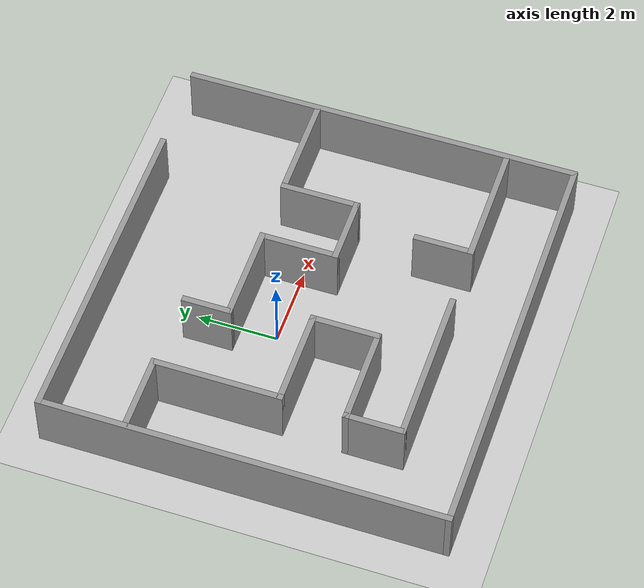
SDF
<sdf version="1.6">
 <world name="default">
  <light name="sun" type="directional">
   <pose>0 0 10 0 -0 0</pose>
   <diffuse>0.8 0.8 0.8 1</diffuse>
   <specular>0.1 0.1 0.1 1</specular>
   <attenuation>
    <range>1000</range>
    <constant>0.9</constant>
    <linear>0.01</linear>
    <quadratic>0.001</quadratic>
   </attenuation>
   <direction>-0.5 0.5 -1</direction>
  </light>
  <model name="ground_plane">
   <static>1</static>
   <link name="link">
    <collision name="collision">
     <geometry><plane><normal>0 0 1</normal><size>100 100</size></plane></geometry>
     <surface><friction><ode><mu>100</mu><mu2>50</mu2></ode></friction></surface>
    </collision>
    <visual name="visual">
     <cast_shadows>0</cast_shadows>
     <geometry><plane><normal>0 0 1</normal><size>100 100</size></plane></geometry>
     <material>
      <script><uri>file://media/materials/scripts/gazebo.material</uri><name>Gazebo/Grey</name></script>
     </material>
    </visual>
   </link>
  </model>
  <gravity>0 0 -9.8</gravity>
  <magnetic_field>6e-06 2.3e-05 -4.2e-05</magnetic_field>
  <atmosphere type="adiabatic"/>
  <physics name="default_physics" default="0" type="ode">
   <max_step_size>0.001</max_step_size>
   <real_time_factor>1</real_time_factor>
   <real_time_update_rate>1000</real_time_update_rate>
  </physics>
  <scene><ambient>0.4 0.4 0.4 1</ambient><background>0.7 0.7 0.7 1</background><shadows>1</shadows></scene>
  <spherical_coordinates>
   <surface_model>EARTH_WGS84</surface_model>
   <latitude_deg>0</latitude_deg>
   <longitude_deg>0</longitude_deg>
   <elevation>0</elevation>
   <heading_deg>0</heading_deg>
  </spherical_coordinates>
  <model name="labirent">
   <pose>0.807206 -0.670636 0 0 -0 0</pose>
   <link name="Wall_19">
    <collision name="Wall_19_Collision">
     <geometry><box><size>10 0.15 1.5</size></box></geometry>
     <pose>0 0 0.75 0 -0 0</pose>
    </collision>
    <visual name="Wall_19_Visual">
     <pose>0 0 0.75 0 -0 0</pose>
     <geometry><box><size>10 0.15 1.5</size></box></geometry>
     <material>
      <script><uri>file://media/materials/scripts/gazebo.material</uri><name>Gazebo/Grey</name></script>
      <ambient>0.564706 0.576471 0.54902 1</ambient>
     </material>
    </visual>
    <pose>5.175 0 0 0 0 -1.5708</pose>
   </link>
   <link name="Wall_20">
    <collision name="Wall_20_Collision">
     <geometry><box><size>10.5 0.15 1.5</size></box></geometry>
     <pose>0 0 0.75 0 -0 0</pose>
    </collision>
    <visual name="Wall_20_Visual">
     <pose>0 0 0.75 0 -0 0</pose>
     <geometry><box><size>10.5 0.15 1.5</size></box></geometry>
     <material>
      <script><uri>file://media/materials/scripts/gazebo.material</uri><name>Gazebo/Grey</name></script>
      <ambient>0.564706 0.576471 0.54902 1</ambient>
     </material>
    </visual>
    <pose>0 -4.925 0 0 -0 3.14159</pose>
   </link>
   <link name="Wall_21">
    <collision name="Wall_21_Collision">
     <geometry><box><size>10 0.15 1.5</size></box></geometry>
     <pose>0 0 0.75 0 -0 0</pose>
    </collision>
    <visual name="Wall_21_Visual">
     <pose>0 0 0.75 0 -0 0</pose>
     <geometry><box><size>10 0.15 1.5</size></box></geometry>
     <material>
      <script><uri>file://media/materials/scripts/gazebo.material</uri><name>Gazebo/Grey</name></script>
      <ambient>0.564706 0.576471 0.54902 1</ambient>
     </material>
    </visual>
    <pose>-5.175 0 0 0 -0 1.5708</pose>
   </link>
   <link name="Wall_22">
    <collision name="Wall_22_Collision">
     <geometry><box><size>8.25 0.15 1.5</size></box></geometry>
     <pose>0 0 0.75 0 -0 0</pose>
    </collision>
    <visual name="Wall_22_Visual">
     <pose>0 0 0.75 0 -0 0</pose>
     <geometry><box><size>8.25 0.15 1.5</size></box></geometry>
     <material>
      <script><uri>file://media/materials/scripts/gazebo.material</uri><name>Gazebo/Grey</name></script>
      <ambient>0.572549 0.576471 0.560784 1</ambient>
     </material>
    </visual>
    <pose>-1.125 4.925 0 0 -0 0</pose>
   </link>
   <link name="Wall_25">
    <collision name="Wall_25_Collision">
     <geometry><box><size>2 0.15 1.5</size></box></geometry>
     <pose>0 0 0.75 0 -0 0</pose>
    </collision>
    <visual name="Wall_25_Visual">
     <pose>0 0 0.75 0 -0 0</pose>
     <geometry><box><size>2 0.15 1.5</size></box></geometry>
     <material>
      <script><uri>file://media/materials/scripts/gazebo.material</uri><name>Gazebo/Grey</name></script>
      <ambient>0.564706 0.576471 0.54902 1</ambient>
     </material>
    </visual>
    <pose>-4.227 2.815 0 0 -0 0</pose>
   </link>
   <link name="Wall_26">
    <collision name="Wall_26_Collision">
     <geometry><box><size>3.25 0.15 1.5</size></box></geometry>
     <pose>0 0 0.75 0 -0 0</pose>
    </collision>
    <visual name="Wall_26_Visual">
     <pose>0 0 0.75 0 -0 0</pose>
     <geometry><box><size>3.25 0.15 1.5</size></box></geometry>
     <material>
      <script><uri>file://media/materials/scripts/gazebo.material</uri><name>Gazebo/Grey</name></script>
      <ambient>0.564706 0.576471 0.54902 1</ambient>
     </material>
    </visual>
    <pose>-3.302 1.265 0 0 0 -1.5708</pose>
   </link>
   <link name="Wall_27">
    <collision name="Wall_27_Collision">
     <geometry><box><size>2.5 0.15 1.5</size></box></geometry>
     <pose>0 0 0.75 0 -0 0</pose>
    </collision>
    <visual name="Wall_27_Visual">
     <pose>0 0 0.75 0 -0 0</pose>
     <geometry><box><size>2.5 0.15 1.5</size></box></geometry>
     <material>
      <script><uri>file://media/materials/scripts/gazebo.material</uri><name>Gazebo/Grey</name></script>
      <ambient>0.572549 0.576471 0.560784 1</ambient>
     </material>
    </visual>
    <pose>-2.127 -0.285 0 0 -0 0</pose>
   </link>
   <link name="Wall_28">
    <collision name="Wall_28_Collision">
     <geometry><box><size>1.75 0.15 1.5</size></box></geometry>
     <pose>0 0 0.75 0 -0 0</pose>
    </collision>
    <visual name="Wall_28_Visual">
     <pose>0 0 0.75 0 -0 0</pose>
     <geometry><box><size>1.75 0.15 1.5</size></box></geometry>
     <material>
      <script><uri>file://media/materials/scripts/gazebo.material</uri><name>Gazebo/Grey</name></script>
      <ambient>0.572549 0.576471 0.560784 1</ambient>
     </material>
    </visual>
    <pose>-0.952 -1.085 0 0 0 -1.5708</pose>
   </link>
   <link name="Wall_29">
    <collision name="Wall_29_Collision">
     <geometry><box><size>2.5 0.15 1.5</size></box></geometry>
     <pose>0 0 0.75 0 -0 0</pose>
    </collision>
    <visual name="Wall_29_Visual">
     <pose>0 0 0.75 0 -0 0</pose>
     <geometry><box><size>2.5 0.15 1.5</size></box></geometry>
     <material>
      <script><uri>file://media/materials/scripts/gazebo.material</uri><name>Gazebo/Grey</name></script>
      <ambient>0.572549 0.576471 0.560784 1</ambient>
     </material>
    </visual>
    <pose>-2.127 -1.885 0 0 -0 3.14159</pose>
   </link>
   <link name="Wall_30">
    <collision name="Wall_30_Collision">
     <geometry><box><size>1.5 0.15 1.5</size></box></geometry>
     <pose>0 0 0.75 0 -0 0</pose>
    </collision>
    <visual name="Wall_30_Visual">
     <pose>0 0 0.75 0 -0 0</pose>
     <geometry><box><size>1.5 0.15 1.5</size></box></geometry>
     <material>
      <script><uri>file://media/materials/scripts/gazebo.material</uri><name>Gazebo/Grey</name></script>
      <ambient>0.572549 0.576471 0.560784 1</ambient>
     </material>
    </visual>
    <pose>-3.302 -2.56 0 0 0 -1.5708</pose>
   </link>
   <link name="Wall_31">
    <collision name="Wall_31_Collision">
     <geometry><box><size>4 0.15 1.5</size></box></geometry>
     <pose>0 0 0.75 0 -0 0</pose>
    </collision>
    <visual name="Wall_31_Visual">
     <pose>0 0 0.75 0 -0 0</pose>
     <geometry><box><size>4 0.15 1.5</size></box></geometry>
     <material>
      <script><uri>file://media/materials/scripts/gazebo.material</uri><name>Gazebo/Grey</name></script>
      <ambient>0.564706 0.576471 0.54902 1</ambient>
     </material>
    </visual>
    <pose>-1.377 -3.235 0 0 -0 0</pose>
   </link>
   <link name="Wall_39">
    <collision name="Wall_39_Collision">
     <geometry><box><size>1.25 0.15 1.5</size></box></geometry>
     <pose>0 0 0.75 0 -0 0</pose>
    </collision>
    <visual name="Wall_39_Visual">
     <pose>0 0 0.75 0 -0 0</pose>
     <geometry><box><size>1.25 0.15 1.5</size></box></geometry>
     <material>
      <script><uri>file://media/materials/scripts/gazebo.material</uri><name>Gazebo/Grey</name></script>
      <ambient>0.572549 0.576471 0.560784 1</ambient>
     </material>
    </visual>
    <pose>-1.388 2.194 0 0 0 -1.5708</pose>
   </link>
   <link name="Wall_40">
    <collision name="Wall_40_Collision">
     <geometry><box><size>2.5 0.15 1.5</size></box></geometry>
     <pose>0 0 0.75 0 -0 0</pose>
    </collision>
    <visual name="Wall_40_Visual">
     <pose>0 0 0.75 0 -0 0</pose>
     <geometry><box><size>2.5 0.15 1.5</size></box></geometry>
     <material>
      <script><uri>file://media/materials/scripts/gazebo.material</uri><name>Gazebo/Grey</name></script>
      <ambient>0.572549 0.576471 0.560784 1</ambient>
     </material>
    </visual>
    <pose>-0.213 1.644 0 0 -0 0</pose>
   </link>
   <link name="Wall_41">
    <collision name="Wall_41_Collision">
     <geometry><box><size>2 0.15 1.5</size></box></geometry>
     <pose>0 0 0.75 0 -0 0</pose>
    </collision>
    <visual name="Wall_41_Visual">
     <pose>0 0 0.75 0 -0 0</pose>
     <geometry><box><size>2 0.15 1.5</size></box></geometry>
     <material>
      <script><uri>file://media/materials/scripts/gazebo.material</uri><name>Gazebo/Grey</name></script>
      <ambient>0.564706 0.576471 0.54902 1</ambient>
     </material>
    </visual>
    <pose>0.962 0.719 0 0 0 -1.5708</pose>
   </link>
   <link name="Wall_42">
    <collision name="Wall_42_Collision">
     <geometry><box><size>1.75 0.15 1.5</size></box></geometry>
     <pose>0 0 0.75 0 -0 0</pose>
    </collision>
    <visual name="Wall_42_Visual">
     <pose>0 0 0.75 0 -0 0</pose>
     <geometry><box><size>1.75 0.15 1.5</size></box></geometry>
     <material>
      <script><uri>file://media/materials/scripts/gazebo.material</uri><name>Gazebo/Grey</name></script>
      <ambient>0.572549 0.576471 0.560784 1</ambient>
     </material>
    </visual>
    <pose>1.762 -0.206 0 0 -0 0</pose>
   </link>
   <link name="Wall_43">
    <collision name="Wall_43_Collision">
     <geometry><box><size>2 0.15 1.5</size></box></geometry>
     <pose>0 0 0.75 0 -0 0</pose>
    </collision>
    <visual name="Wall_43_Visual">
     <pose>0 0 0.75 0 -0 0</pose>
     <geometry><box><size>2 0.15 1.5</size></box></geometry>
     <material>
      <script><uri>file://media/materials/scripts/gazebo.material</uri><name>Gazebo/Grey</name></script>
      <ambient>0.572549 0.576471 0.560784 1</ambient>
     </material>
    </visual>
    <pose>2.562 0.719 0 0 -0 1.5708</pose>
   </link>
   <link name="Wall_44">
    <collision name="Wall_44_Collision">
     <geometry><box><size>2.75 0.15 1.5</size></box></geometry>
     <pose>0 0 0.75 0 -0 0</pose>
    </collision>
    <visual name="Wall_44_Visual">
     <pose>0 0 0.75 0 -0 0</pose>
     <geometry><box><size>2.75 0.15 1.5</size></box></geometry>
     <material>
      <script><uri>file://media/materials/scripts/gazebo.material</uri><name>Gazebo/Grey</name></script>
      <ambient>0.564706 0.576471 0.54902 1</ambient>
     </material>
    </visual>
    <pose>3.862 1.644 0 0 -0 0</pose>
   </link>
   <link name="Wall_47">
    <collision name="Wall_47_Collision">
     <geometry><box><size>3.12781 0.15 1.5</size></box></geometry>
     <pose>0 0 0.75 0 -0 0</pose>
    </collision>
    <visual name="Wall_47_Visual">
     <pose>0 0 0.75 0 -0 0</pose>
     <geometry><box><size>3.12781 0.15 1.5</size></box></geometry>
     <material>
      <script><uri>file://media/materials/scripts/gazebo.material</uri><name>Gazebo/Grey</name></script>
      <ambient>0.564706 0.576471 0.54902 1</ambient>
     </material>
    </visual>
    <pose>3.582 -3.229 0 0 -0 3.14159</pose>
   </link>
   <link name="Wall_48">
    <collision name="Wall_48_Collision">
     <geometry><box><size>1.5 0.15 1.5</size></box></geometry>
     <pose>0 0 0.75 0 -0 0</pose>
    </collision>
    <visual name="Wall_48_Visual">
     <pose>0 0 0.75 0 -0 0</pose>
     <geometry><box><size>1.5 0.15 1.5</size></box></geometry>
     <material>
      <script><uri>file://media/materials/scripts/gazebo.material</uri><name>Gazebo/Grey</name></script>
      <ambient>0.564706 0.576471 0.54902 1</ambient>
     </material>
    </visual>
    <pose>2.093 -2.554 0 0 -0 1.5708</pose>
   </link>
   <static>1</static>
  </model>
 </world>
</sdf>
